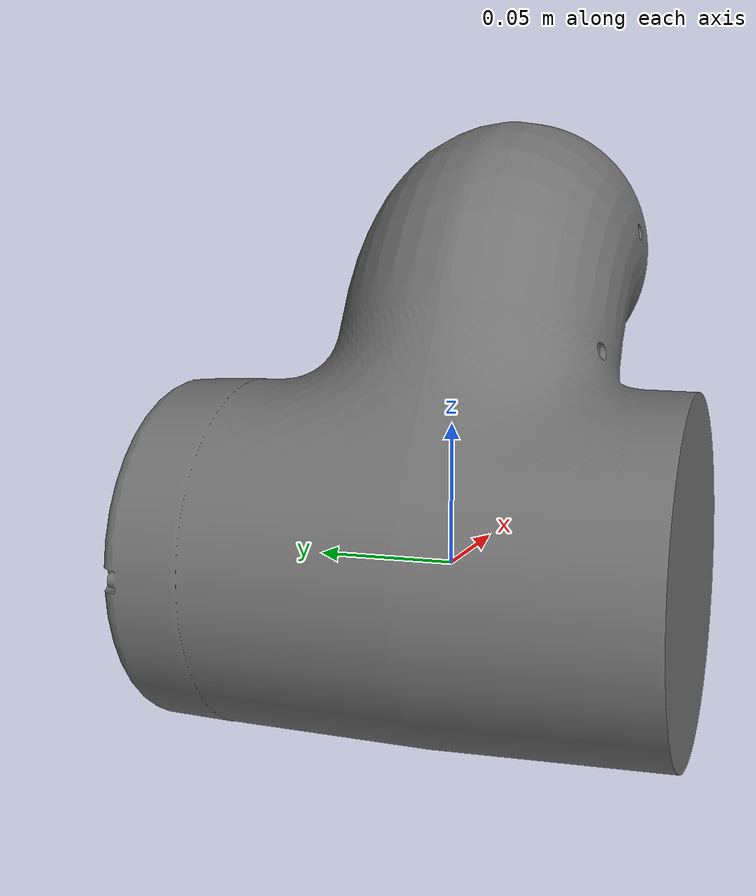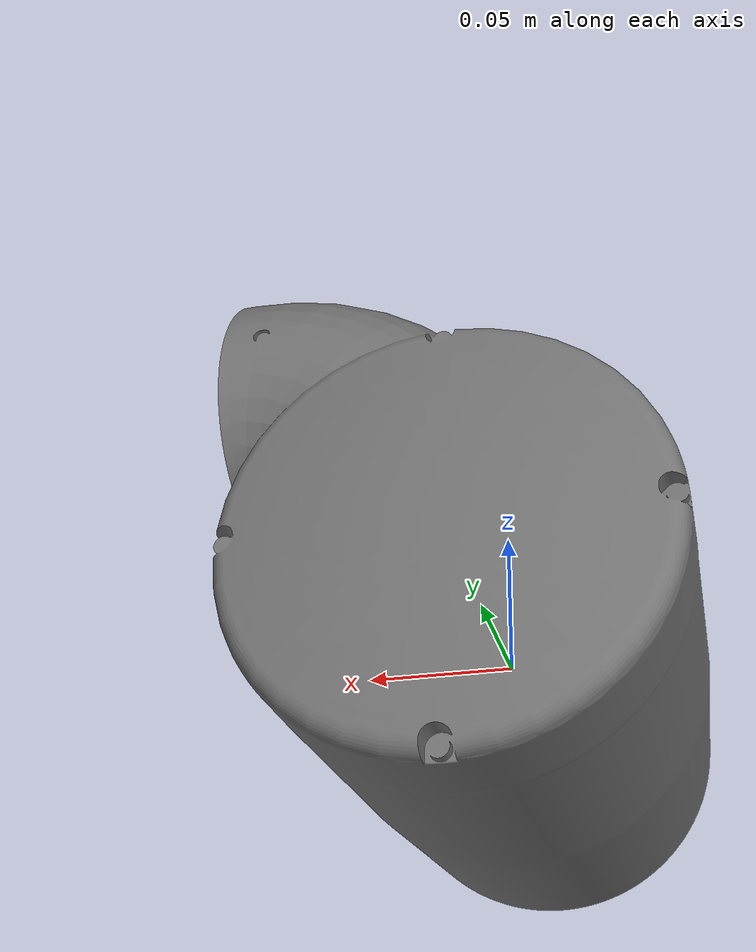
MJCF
<mujoco model="link_3">
  <default>
    <default class="visual">
      <geom group="2" type="mesh" contype="0" conaffinity="0"/>
    </default>
    <default class="collision">
      <geom group="3" type="mesh"/>
    </default>
  </default>
  <asset>
    <material name="material_link_3_0" specular="0.20000000000000004" shininess="1.0" rgba="0.43921569 0.43921569 0.43921569 1.0"/>
    <mesh file="link_3.obj"/>
  </asset>
  <worldbody>
    <body name="link_3">
      <geom material="material_link_3_0" mesh="link_3" class="visual"/>
      <geom mesh="link_3" class="collision"/>
    </body>
  </worldbody>
</mujoco>
